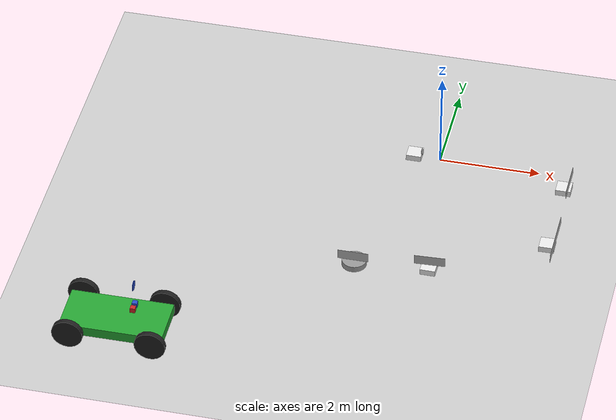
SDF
<sdf version="1.6">
 <world name="default">
  <model name="ground_plane">
   <static>1</static>
   <link name="link">
    <collision name="collision">
     <geometry><plane><normal>0 0 1</normal><size>100 100</size></plane></geometry>
     <surface><friction><ode><mu>100</mu><mu2>50</mu2></ode></friction></surface>
    </collision>
    <visual name="visual">
     <cast_shadows>0</cast_shadows>
     <geometry><plane><normal>0 0 1</normal><size>100 100</size></plane></geometry>
     <material>
      <script><uri>file://media/materials/scripts/gazebo.material</uri><name>Gazebo/Grey</name></script>
     </material>
    </visual>
   </link>
  </model>
  <model name="charge_pile">
   <link name="link_0">
    <pose>0.001175 0.064666 -0.007829 0 -0 0</pose>
    <inertial>
     <mass>1</mass>
     <inertia>
      <ixx>0.166667</ixx>
      <ixy>0</ixy>
      <ixz>0</ixz>
      <iyy>0.166667</iyy>
      <iyz>0</iyz>
      <izz>0.166667</izz>
     </inertia>
    </inertial>
    <visual name="visual">
     <geometry><box><size>0.3 0.3 0.12</size></box></geometry>
     <material>
      <lighting>1</lighting>
      <script><uri>file://media/materials/scripts/gazebo.material</uri><name>Gazebo/White</name></script>
      <ambient>0.3 0.3 0.3 1</ambient>
      <diffuse>0.7 0.7 0.7 1</diffuse>
      <specular>0.01 0.01 0.01 1</specular>
      <emissive>0 0 0 1</emissive>
      <shader type="vertex"><normal_map>__default__</normal_map></shader>
     </material>
    </visual>
    <collision name="collision">
     <geometry><box><size>0.3 0.3 0.12</size></box></geometry>
     <surface>
      <friction>
       <ode><mu>1000</mu><mu2>1000</mu2><fdir1>0 0 0</fdir1><slip1>0</slip1><slip2>0</slip2></ode>
       <torsional>
        <coefficient>1</coefficient>
        <patch_radius>0</patch_radius>
        <surface_radius>0</surface_radius>
        <use_patch_radius>1</use_patch_radius>
        <ode><slip>0</slip></ode>
       </torsional>
      </friction>
      <bounce><restitution_coefficient>0</restitution_coefficient><threshold>1e+06</threshold></bounce>
      <contact>
       <collide_without_contact>0</collide_without_contact>
       <collide_without_contact_bitmask>1</collide_without_contact_bitmask>
       <collide_bitmask>1</collide_bitmask>
       <ode>
        <soft_cfm>0</soft_cfm>
        <soft_erp>0.2</soft_erp>
        <kp>1e+13</kp>
        <kd>1</kd>
        <max_vel>0.01</max_vel>
        <min_depth>0</min_depth>
       </ode>
       <bullet>
        <split_impulse>1</split_impulse>
        <split_impulse_penetration_threshold>-0.01</split_impulse_penetration_threshold>
        <soft_cfm>0</soft_cfm>
        <soft_erp>0.2</soft_erp>
        <kp>1e+13</kp>
        <kd>1</kd>
       </bullet>
      </contact>
     </surface>
    </collision>
   </link>
   <model name="ar_box0_50">
    <link name="link_0">
     <inertial>
      <mass>1.87342e-05</mass>
      <inertia>
       <ixx>9.25984e-08</ixx>
       <ixy>0</ixy>
       <ixz>0</ixz>
       <iyy>1.0155e-07</iyy>
       <iyz>0</iyz>
       <izz>1.22113e-07</izz>
      </inertia>
     </inertial>
     <visual name="visual">
      <geometry><box><size>0.05 0.05 0.05</size></box></geometry>
      <material>
       <lighting>1</lighting>
       <script>
        <uri>model://ar_box0_50/materials/scripts</uri>
        <uri>model://ar_box0_50/materials/textures</uri>
        <name>ArBox050/Image</name>
       </script>
       <ambient>0.3 0.3 0.3 1</ambient>
       <diffuse>0.7 0.7 0.7 1</diffuse>
       <specular>0.01 0.01 0.01 1</specular>
       <emissive>0 0 0 1</emissive>
      </material>
      <cast_shadows>0</cast_shadows>
     </visual>
     <collision name="collision">
      <geometry><box><size>0.05 0.05 0.05</size></box></geometry>
      <surface>
       <friction>
        <ode><mu>100</mu><mu2>100</mu2><fdir1>0 0 0</fdir1><slip1>0</slip1><slip2>0</slip2></ode>
        <torsional>
         <coefficient>1</coefficient>
         <patch_radius>0</patch_radius>
         <surface_radius>0</surface_radius>
         <use_patch_radius>1</use_patch_radius>
         <ode><slip>0</slip></ode>
        </torsional>
       </friction>
       <bounce><restitution_coefficient>0</restitution_coefficient><threshold>1e+06</threshold></bounce>
       <contact>
        <collide_without_contact>0</collide_without_contact>
        <collide_without_contact_bitmask>1</collide_without_contact_bitmask>
        <collide_bitmask>1</collide_bitmask>
        <ode>
         <soft_cfm>0</soft_cfm>
         <soft_erp>0.2</soft_erp>
         <kp>1e+13</kp>
         <kd>1</kd>
         <max_vel>0.01</max_vel>
         <min_depth>0</min_depth>
        </ode>
        <bullet>
         <split_impulse>1</split_impulse>
         <split_impulse_penetration_threshold>-0.01</split_impulse_penetration_threshold>
         <soft_cfm>0</soft_cfm>
         <soft_erp>0.2</soft_erp>
         <kp>1e+13</kp>
         <kd>1</kd>
        </bullet>
       </contact>
      </surface>
     </collision>
    </link>
    <static>0</static>
    <pose>-0.001175 -0.064151 0.007829 0 -0 0</pose>
   </model>
   <joint name="link_0_JOINT_0" type="fixed">
    <parent>link_0</parent>
    <child>ar_box0_50::link_0</child>
    <physics>
     <ode><limit><cfm>0</cfm><erp>0.2</erp></limit><suspension><cfm>0</cfm><erp>0.2</erp></suspension></ode>
    </physics>
   </joint>
   <static>0</static>
   <pose>-0.457807 -0.00142 0.067829 0 -0 1.56608</pose>
  </model>
  <model name="car">
   <link name="chassis">
    <pose>0 0 0.3 0 -0 0</pose>
    <collision name="collision"><geometry><box><size>2 1 0.2</size></box></geometry></collision>
    <visual name="visual">
     <geometry><box><size>2 1 0.2</size></box></geometry>
     <material>
      <script><uri>file://media/materials/scripts/gazebo.material</uri><name>Gazebo/Green</name></script>
     </material>
    </visual>
    <inertial>
     <inertia><ixx>1</ixx><ixy>0</ixy><ixz>0</ixz><iyy>1</iyy><iyz>0</iyz><izz>1</izz></inertia>
     <mass>1</mass>
    </inertial>
   </link>
   <link name="front_left_wheel">
    <pose>0.8 0.6 0.3 -0 1.5707 1.5707</pose>
    <collision name="collision">
     <geometry><cylinder><radius>0.3</radius><length>0.1</length></cylinder></geometry>
    </collision>
    <visual name="visual">
     <geometry><cylinder><radius>0.3</radius><length>0.1</length></cylinder></geometry>
     <material>
      <script><uri>file://media/materials/scripts/gazebo.material</uri><name>Gazebo/Black</name></script>
     </material>
    </visual>
    <inertial>
     <inertia><ixx>1</ixx><ixy>0</ixy><ixz>0</ixz><iyy>1</iyy><iyz>0</iyz><izz>1</izz></inertia>
     <mass>1</mass>
    </inertial>
   </link>
   <link name="front_right_wheel">
    <pose>0.8 -0.6 0.3 -0 1.5707 1.5707</pose>
    <collision name="collision">
     <geometry><cylinder><radius>0.3</radius><length>0.1</length></cylinder></geometry>
    </collision>
    <visual name="visual">
     <geometry><cylinder><radius>0.3</radius><length>0.1</length></cylinder></geometry>
     <material>
      <script><uri>file://media/materials/scripts/gazebo.material</uri><name>Gazebo/Black</name></script>
     </material>
    </visual>
    <inertial>
     <inertia><ixx>1</ixx><ixy>0</ixy><ixz>0</ixz><iyy>1</iyy><iyz>0</iyz><izz>1</izz></inertia>
     <mass>1</mass>
    </inertial>
   </link>
   <link name="back_right_wheel">
    <pose>-0.8 -0.6 0.3 -0 1.5707 1.5707</pose>
    <collision name="collision">
     <geometry><cylinder><radius>0.3</radius><length>0.1</length></cylinder></geometry>
    </collision>
    <visual name="visual">
     <geometry><cylinder><radius>0.3</radius><length>0.1</length></cylinder></geometry>
     <material>
      <script><uri>file://media/materials/scripts/gazebo.material</uri><name>Gazebo/Black</name></script>
     </material>
    </visual>
    <inertial>
     <inertia><ixx>1</ixx><ixy>0</ixy><ixz>0</ixz><iyy>1</iyy><iyz>0</iyz><izz>1</izz></inertia>
     <mass>1</mass>
    </inertial>
   </link>
   <link name="back_left_wheel">
    <pose>-0.8 0.6 0.3 -0 1.5707 1.5707</pose>
    <collision name="collision">
     <geometry><cylinder><radius>0.3</radius><length>0.1</length></cylinder></geometry>
    </collision>
    <visual name="visual">
     <geometry><cylinder><radius>0.3</radius><length>0.1</length></cylinder></geometry>
     <material>
      <script><uri>file://media/materials/scripts/gazebo.material</uri><name>Gazebo/Black</name></script>
     </material>
    </visual>
    <inertial>
     <inertia><ixx>1</ixx><ixy>0</ixy><ixz>0</ixz><iyy>1</iyy><iyz>0</iyz><izz>1</izz></inertia>
     <mass>1</mass>
    </inertial>
   </link>
   <link name="gas_pedal">
    <pose>0.3 0.1 0.5 0 -0 0</pose>
    <collision name="collision"><geometry><box><size>0.1 0.1 0.1</size></box></geometry></collision>
    <visual name="visual">
     <geometry><box><size>0.1 0.1 0.1</size></box></geometry>
     <material>
      <script><uri>file://media/materials/scripts/gazebo.material</uri><name>Gazebo/Red</name></script>
     </material>
    </visual>
    <inertial>
     <inertia><ixx>1</ixx><ixy>0</ixy><ixz>0</ixz><iyy>1</iyy><iyz>0</iyz><izz>1</izz></inertia>
     <mass>1</mass>
    </inertial>
   </link>
   <link name="brake_pedal">
    <pose>0.3 0.25 0.5 0 -0 0</pose>
    <collision name="collision"><geometry><box><size>0.1 0.1 0.1</size></box></geometry></collision>
    <visual name="visual">
     <geometry><box><size>0.1 0.1 0.1</size></box></geometry>
     <material>
      <script><uri>file://media/materials/scripts/gazebo.material</uri><name>Gazebo/Blue</name></script>
     </material>
    </visual>
    <inertial>
     <inertia><ixx>1</ixx><ixy>0</ixy><ixz>0</ixz><iyy>1</iyy><iyz>0</iyz><izz>1</izz></inertia>
     <mass>1</mass>
    </inertial>
   </link>
   <link name="steering_wheel">
    <pose>0.3 0.2 1 0 1.5707 0</pose>
    <collision name="collision">
     <geometry><cylinder><radius>0.1</radius><length>0.01</length></cylinder></geometry>
    </collision>
    <visual name="visual">
     <geometry><cylinder><radius>0.1</radius><length>0.01</length></cylinder></geometry>
     <material>
      <script><uri>file://media/materials/scripts/gazebo.material</uri><name>Gazebo/Blue</name></script>
     </material>
    </visual>
    <inertial>
     <inertia><ixx>1</ixx><ixy>0</ixy><ixz>0</ixz><iyy>1</iyy><iyz>0</iyz><izz>1</izz></inertia>
     <mass>1</mass>
    </inertial>
   </link>
   <joint name="gas_joint" type="prismatic">
    <parent>chassis</parent>
    <child>gas_pedal</child>
    <axis>
     <xyz>1 0 0</xyz>
     <limit><lower>0</lower><upper>0.2</upper></limit>
     <use_parent_model_frame>1</use_parent_model_frame>
     <dynamics><spring_reference>0</spring_reference><spring_stiffness>0</spring_stiffness></dynamics>
    </axis>
   </joint>
   <joint name="brake_joint" type="prismatic">
    <parent>chassis</parent>
    <child>brake_pedal</child>
    <axis>
     <xyz>1 0 0</xyz>
     <limit><lower>0</lower><upper>0.2</upper></limit>
     <use_parent_model_frame>1</use_parent_model_frame>
     <dynamics><spring_reference>0</spring_reference><spring_stiffness>0</spring_stiffness></dynamics>
    </axis>
   </joint>
   <joint name="steering_joint" type="revolute">
    <parent>chassis</parent>
    <child>steering_wheel</child>
    <axis>
     <xyz>1 0 0</xyz>
     <limit><lower>-7.853</lower><upper>7.853</upper></limit>
     <use_parent_model_frame>1</use_parent_model_frame>
     <dynamics><spring_reference>0</spring_reference><spring_stiffness>0</spring_stiffness></dynamics>
    </axis>
   </joint>
   <joint name="front_left_joint" type="revolute2">
    <parent>chassis</parent>
    <child>front_left_wheel</child>
    <axis>
     <xyz>0 0 1</xyz>
     <limit><lower>5.61641e-07</lower><upper>5.61641e-07</upper></limit>
     <use_parent_model_frame>1</use_parent_model_frame>
     <dynamics><spring_reference>0</spring_reference><spring_stiffness>0</spring_stiffness></dynamics>
    </axis>
    <axis2>
     <xyz>0 1 0</xyz>
     <use_parent_model_frame>1</use_parent_model_frame>
     <dynamics><spring_reference>0</spring_reference><spring_stiffness>0</spring_stiffness></dynamics>
    </axis2>
    <physics><ode><limit><cfm>0</cfm><erp>0.9</erp></limit></ode></physics>
   </joint>
   <joint name="front_right_joint" type="revolute2">
    <parent>chassis</parent>
    <child>front_right_wheel</child>
    <axis>
     <xyz>0 0 1</xyz>
     <limit><lower>5.61641e-07</lower><upper>5.61641e-07</upper></limit>
     <use_parent_model_frame>1</use_parent_model_frame>
     <dynamics><spring_reference>0</spring_reference><spring_stiffness>0</spring_stiffness></dynamics>
    </axis>
    <axis2>
     <xyz>0 1 0</xyz>
     <use_parent_model_frame>1</use_parent_model_frame>
     <dynamics><spring_reference>0</spring_reference><spring_stiffness>0</spring_stiffness></dynamics>
    </axis2>
    <physics><ode><limit><cfm>0</cfm><erp>0.9</erp></limit></ode></physics>
   </joint>
   <joint name="back_right_joint" type="revolute2">
    <parent>chassis</parent>
    <child>back_right_wheel</child>
    <axis>
     <xyz>0 0 1</xyz>
     <limit><lower>0</lower><upper>0</upper></limit>
     <use_parent_model_frame>1</use_parent_model_frame>
     <dynamics><spring_reference>0</spring_reference><spring_stiffness>0</spring_stiffness></dynamics>
    </axis>
    <axis2>
     <xyz>0 1 0</xyz>
     <use_parent_model_frame>1</use_parent_model_frame>
     <dynamics><spring_reference>0</spring_reference><spring_stiffness>0</spring_stiffness></dynamics>
    </axis2>
    <physics><ode><limit><cfm>0</cfm><erp>0.9</erp></limit></ode></physics>
   </joint>
   <joint name="back_left_joint" type="revolute2">
    <parent>chassis</parent>
    <child>back_left_wheel</child>
    <axis>
     <xyz>0 0 1</xyz>
     <limit><lower>0</lower><upper>0</upper></limit>
     <use_parent_model_frame>1</use_parent_model_frame>
     <dynamics><spring_reference>0</spring_reference><spring_stiffness>0</spring_stiffness></dynamics>
    </axis>
    <axis2>
     <xyz>0 1 0</xyz>
     <use_parent_model_frame>1</use_parent_model_frame>
     <dynamics><spring_reference>0</spring_reference><spring_stiffness>0</spring_stiffness></dynamics>
    </axis2>
    <physics><ode><limit><cfm>0</cfm><erp>0.9</erp></limit></ode></physics>
   </joint>
   <plugin name="vehicle" filename="libVehiclePlugin.so">
    <front_left>front_left_joint</front_left>
    <front_right>front_right_joint</front_right>
    <back_left>back_left_joint</back_left>
    <back_right>back_right_joint</back_right>
    <gas>gas_joint</gas>
    <brake>brake_joint</brake>
    <steering>steering_joint</steering>
    <front_power>10</front_power>
    <rear_power>10</rear_power>
    <tire_angle_range>0.5</tire_angle_range>
    <max_speed>10</max_speed>
    <aero_load>0.1</aero_load>
   </plugin>
   <pose>-4.96763 -6.30056 -0.002615 -0.000273 0.000908 0.006388</pose>
  </model>
  <model name="charge_flag">
   <link name="link_0">
    <inertial>
     <mass>1</mass>
     <inertia>
      <ixx>0.166667</ixx>
      <ixy>0</ixy>
      <ixz>0</ixz>
      <iyy>0.166667</iyy>
      <iyz>0</iyz>
      <izz>0.166667</izz>
     </inertia>
    </inertial>
    <visual name="visual">
     <geometry><box><size>0.165 0.001 0.094</size></box></geometry>
     <material>
      <lighting>1</lighting>
      <script>
       <uri>model://charge_flag/materials/scripts</uri>
       <uri>model://charge_flag/materials/textures</uri>
       <name>Charge/Image</name>
      </script>
      <ambient>0.3 0.3 0.3 1</ambient>
      <diffuse>0.7 0.7 0.7 1</diffuse>
      <specular>0.01 0.01 0.01 1</specular>
      <emissive>0 0 0 1</emissive>
      <shader type="vertex"><normal_map>__default__</normal_map></shader>
     </material>
    </visual>
    <collision name="collision">
     <geometry><box><size>0.001 0.001 0.001</size></box></geometry>
     <surface>
      <friction>
       <ode><mu>1</mu><mu2>1</mu2><fdir1>0 0 0</fdir1><slip1>0</slip1><slip2>0</slip2></ode>
       <torsional>
        <coefficient>1</coefficient>
        <patch_radius>0</patch_radius>
        <surface_radius>0</surface_radius>
        <use_patch_radius>1</use_patch_radius>
        <ode><slip>0</slip></ode>
       </torsional>
      </friction>
      <bounce><restitution_coefficient>0</restitution_coefficient><threshold>1e+06</threshold></bounce>
      <contact>
       <collide_without_contact>0</collide_without_contact>
       <collide_without_contact_bitmask>1</collide_without_contact_bitmask>
       <collide_bitmask>1</collide_bitmask>
       <ode>
        <soft_cfm>0</soft_cfm>
        <soft_erp>0.2</soft_erp>
        <kp>1e+13</kp>
        <kd>1</kd>
        <max_vel>0.01</max_vel>
        <min_depth>0</min_depth>
       </ode>
       <bullet>
        <split_impulse>1</split_impulse>
        <split_impulse_penetration_threshold>-0.01</split_impulse_penetration_threshold>
        <soft_cfm>0</soft_cfm>
        <soft_erp>0.2</soft_erp>
        <kp>1e+13</kp>
        <kd>1</kd>
       </bullet>
      </contact>
     </surface>
    </collision>
   </link>
   <static>1</static>
   <pose>-0.379743 -0.002865 0.1681 0 -0 1.57994</pose>
  </model>
  <model name="charge_pile_3">
   <link name="link_0">
    <pose>0.001175 0.064666 -0.007829 0 -0 0</pose>
    <inertial>
     <mass>1</mass>
     <inertia>
      <ixx>0.166667</ixx>
      <ixy>0</ixy>
      <ixz>0</ixz>
      <iyy>0.166667</iyy>
      <iyz>0</iyz>
      <izz>0.166667</izz>
     </inertia>
    </inertial>
    <visual name="visual">
     <geometry><box><size>0.3 0.3 0.12</size></box></geometry>
     <material>
      <lighting>1</lighting>
      <script><uri>file://media/materials/scripts/gazebo.material</uri><name>Gazebo/White</name></script>
      <ambient>0.3 0.3 0.3 1</ambient>
      <diffuse>0.7 0.7 0.7 1</diffuse>
      <specular>0.01 0.01 0.01 1</specular>
      <emissive>0 0 1 1</emissive>
      <shader type="vertex"><normal_map>__default__</normal_map></shader>
     </material>
    </visual>
    <collision name="collision">
     <geometry><box><size>0.3 0.3 0.12</size></box></geometry>
     <surface>
      <friction><ode><mu>100</mu><mu2>50</mu2></ode></friction>
      <bounce><restitution_coefficient>0</restitution_coefficient><threshold>1e+06</threshold></bounce>
      <contact>
       <collide_without_contact>0</collide_without_contact>
       <collide_without_contact_bitmask>1</collide_without_contact_bitmask>
       <collide_bitmask>1</collide_bitmask>
       <ode>
        <soft_cfm>0</soft_cfm>
        <soft_erp>0.2</soft_erp>
        <kp>1e+13</kp>
        <kd>1</kd>
        <max_vel>0.01</max_vel>
        <min_depth>0</min_depth>
       </ode>
       <bullet>
        <split_impulse>1</split_impulse>
        <split_impulse_penetration_threshold>-0.01</split_impulse_penetration_threshold>
        <soft_cfm>0</soft_cfm>
        <soft_erp>0.2</soft_erp>
        <kp>1e+13</kp>
        <kd>1</kd>
       </bullet>
      </contact>
     </surface>
    </collision>
   </link>
   <model name="ar_box0_50">
    <link name="link_0">
     <inertial>
      <mass>1.87342e-05</mass>
      <inertia>
       <ixx>9.25984e-08</ixx>
       <ixy>0</ixy>
       <ixz>0</ixz>
       <iyy>1.0155e-07</iyy>
       <iyz>0</iyz>
       <izz>1.22113e-07</izz>
      </inertia>
     </inertial>
     <visual name="visual">
      <geometry><box><size>0.05 0.05 0.05</size></box></geometry>
      <material>
       <lighting>1</lighting>
       <script>
        <uri>model://ar_box0_50/materials/scripts</uri>
        <uri>model://ar_box0_50/materials/textures</uri>
        <name>ArBox050/Image</name>
       </script>
       <ambient>0.3 0.3 0.3 1</ambient>
       <diffuse>0.7 0.7 0.7 1</diffuse>
       <specular>0.01 0.01 0.01 1</specular>
       <emissive>1 1 1 1</emissive>
      </material>
      <cast_shadows>0</cast_shadows>
     </visual>
     <collision name="collision">
      <geometry><box><size>0.05 0.05 0.05</size></box></geometry>
      <surface>
       <friction><ode><mu>100</mu><mu2>50</mu2></ode></friction>
       <bounce><restitution_coefficient>0</restitution_coefficient><threshold>1e+06</threshold></bounce>
       <contact>
        <collide_without_contact>0</collide_without_contact>
        <collide_without_contact_bitmask>1</collide_without_contact_bitmask>
        <collide_bitmask>1</collide_bitmask>
        <ode>
         <soft_cfm>0</soft_cfm>
         <soft_erp>0.2</soft_erp>
         <kp>1e+13</kp>
         <kd>1</kd>
         <max_vel>0.01</max_vel>
         <min_depth>0</min_depth>
        </ode>
        <bullet>
         <split_impulse>1</split_impulse>
         <split_impulse_penetration_threshold>-0.01</split_impulse_penetration_threshold>
         <soft_cfm>0</soft_cfm>
         <soft_erp>0.2</soft_erp>
         <kp>1e+13</kp>
         <kd>1</kd>
        </bullet>
       </contact>
      </surface>
     </collision>
    </link>
    <static>0</static>
    <pose>-0.001175 -0.064151 0.007829 0 -0 0</pose>
   </model>
   <joint name="link_0_JOINT_0" type="fixed">
    <parent>link_0</parent>
    <child>ar_box0_50::link_0</child>
    <physics>
     <ode><limit><cfm>0</cfm><erp>0.2</erp></limit><suspension><cfm>0</cfm><erp>0.2</erp></suspension></ode>
    </physics>
   </joint>
   <static>0</static>
   <pose>2.49613 -0.413245 0.067829 0 0 -1.57087</pose>
  </model>
  <model name="Text-AO">
   <link name="link_0">
    <inertial>
     <mass>1</mass>
     <inertia>
      <ixx>0.166667</ixx>
      <ixy>0</ixy>
      <ixz>0</ixz>
      <iyy>0.166667</iyy>
      <iyz>0</iyz>
      <izz>0.166667</izz>
     </inertia>
    </inertial>
    <visual name="visual">
     <geometry><box><size>1.2 0.001 0.2</size></box></geometry>
     <material>
      <lighting>1</lighting>
      <script>
       <uri>model://Text/materials/scripts</uri>
       <uri>model://Text/materials/textures</uri>
       <name>AO/Image</name>
      </script>
      <ambient>0.3 0.3 0.3 1</ambient>
      <diffuse>0.7 0.7 0.7 1</diffuse>
      <specular>0.01 0.01 0.01 1</specular>
      <emissive>0 0 0 1</emissive>
      <shader type="vertex"><normal_map>__default__</normal_map></shader>
     </material>
    </visual>
    <collision name="collision">
     <geometry><box><size>0.000998022 0.001 0.00100008</size></box></geometry>
     <surface>
      <friction>
       <ode><mu>1</mu><mu2>1</mu2><fdir1>0 0 0</fdir1><slip1>0</slip1><slip2>0</slip2></ode>
       <torsional>
        <coefficient>1</coefficient>
        <patch_radius>0</patch_radius>
        <surface_radius>0</surface_radius>
        <use_patch_radius>1</use_patch_radius>
        <ode><slip>0</slip></ode>
       </torsional>
      </friction>
      <bounce><restitution_coefficient>0</restitution_coefficient><threshold>1e+06</threshold></bounce>
      <contact>
       <collide_without_contact>0</collide_without_contact>
       <collide_without_contact_bitmask>1</collide_without_contact_bitmask>
       <collide_bitmask>1</collide_bitmask>
       <ode>
        <soft_cfm>0</soft_cfm>
        <soft_erp>0.2</soft_erp>
        <kp>1e+13</kp>
        <kd>1</kd>
        <max_vel>0.01</max_vel>
        <min_depth>0</min_depth>
       </ode>
       <bullet>
        <split_impulse>1</split_impulse>
        <split_impulse_penetration_threshold>-0.01</split_impulse_penetration_threshold>
        <soft_cfm>0</soft_cfm>
        <soft_erp>0.2</soft_erp>
        <kp>1e+13</kp>
        <kd>1</kd>
       </bullet>
      </contact>
     </surface>
    </collision>
   </link>
   <static>1</static>
   <pose>2.70061 -2.18044 0.252037 0 0 -1.57407</pose>
  </model>
  <model name="charge_pile_4">
   <link name="link_0">
    <pose>0.001175 0.064666 -0.007829 0 -0 0</pose>
    <inertial>
     <mass>1</mass>
     <inertia>
      <ixx>0.166667</ixx>
      <ixy>0</ixy>
      <ixz>0</ixz>
      <iyy>0.166667</iyy>
      <iyz>0</iyz>
      <izz>0.166667</izz>
     </inertia>
    </inertial>
    <visual name="visual">
     <geometry><box><size>0.3 0.3 0.12</size></box></geometry>
     <material>
      <lighting>1</lighting>
      <script><uri>file://media/materials/scripts/gazebo.material</uri><name>Gazebo/White</name></script>
      <ambient>0.3 0.3 0.3 1</ambient>
      <diffuse>0.7 0.7 0.7 1</diffuse>
      <specular>0.01 0.01 0.01 1</specular>
      <emissive>0 0 1 1</emissive>
      <shader type="vertex"><normal_map>__default__</normal_map></shader>
     </material>
    </visual>
    <collision name="collision">
     <geometry><box><size>0.3 0.3 0.12</size></box></geometry>
     <surface>
      <friction><ode><mu>100</mu><mu2>50</mu2></ode></friction>
      <bounce><restitution_coefficient>0</restitution_coefficient><threshold>1e+06</threshold></bounce>
      <contact>
       <collide_without_contact>0</collide_without_contact>
       <collide_without_contact_bitmask>1</collide_without_contact_bitmask>
       <collide_bitmask>1</collide_bitmask>
       <ode>
        <soft_cfm>0</soft_cfm>
        <soft_erp>0.2</soft_erp>
        <kp>1e+13</kp>
        <kd>1</kd>
        <max_vel>0.01</max_vel>
        <min_depth>0</min_depth>
       </ode>
       <bullet>
        <split_impulse>1</split_impulse>
        <split_impulse_penetration_threshold>-0.01</split_impulse_penetration_threshold>
        <soft_cfm>0</soft_cfm>
        <soft_erp>0.2</soft_erp>
        <kp>1e+13</kp>
        <kd>1</kd>
       </bullet>
      </contact>
     </surface>
    </collision>
   </link>
   <model name="ar_box0_50">
    <link name="link_0">
     <inertial>
      <mass>1.87342e-05</mass>
      <inertia>
       <ixx>9.25984e-08</ixx>
       <ixy>0</ixy>
       <ixz>0</ixz>
       <iyy>1.0155e-07</iyy>
       <iyz>0</iyz>
       <izz>1.22113e-07</izz>
      </inertia>
     </inertial>
     <visual name="visual">
      <geometry><box><size>0.05 0.05 0.05</size></box></geometry>
      <material>
       <lighting>1</lighting>
       <script>
        <uri>model://ar_box0_50/materials/scripts</uri>
        <uri>model://ar_box0_50/materials/textures</uri>
        <name>ArBox050/Image</name>
       </script>
       <ambient>0.3 0.3 0.3 1</ambient>
       <diffuse>0.7 0.7 0.7 1</diffuse>
       <specular>0.01 0.01 0.01 1</specular>
       <emissive>1 1 1 1</emissive>
      </material>
      <cast_shadows>0</cast_shadows>
     </visual>
     <collision name="collision">
      <geometry><box><size>0.05 0.05 0.05</size></box></geometry>
      <surface>
       <friction><ode><mu>100</mu><mu2>50</mu2></ode></friction>
       <bounce><restitution_coefficient>0</restitution_coefficient><threshold>1e+06</threshold></bounce>
       <contact>
        <collide_without_contact>0</collide_without_contact>
        <collide_without_contact_bitmask>1</collide_without_contact_bitmask>
        <collide_bitmask>1</collide_bitmask>
        <ode>
         <soft_cfm>0</soft_cfm>
         <soft_erp>0.2</soft_erp>
         <kp>1e+13</kp>
         <kd>1</kd>
         <max_vel>0.01</max_vel>
         <min_depth>0</min_depth>
        </ode>
        <bullet>
         <split_impulse>1</split_impulse>
         <split_impulse_penetration_threshold>-0.01</split_impulse_penetration_threshold>
         <soft_cfm>0</soft_cfm>
         <soft_erp>0.2</soft_erp>
         <kp>1e+13</kp>
         <kd>1</kd>
        </bullet>
       </contact>
      </surface>
     </collision>
    </link>
    <static>0</static>
    <pose>-0.001175 -0.064151 0.007829 0 -0 0</pose>
   </model>
   <joint name="link_0_JOINT_0" type="fixed">
    <parent>link_0</parent>
    <child>ar_box0_50::link_0</child>
    <physics>
     <ode><limit><cfm>0</cfm><erp>0.2</erp></limit><suspension><cfm>0</cfm><erp>0.2</erp></suspension></ode>
    </physics>
   </joint>
   <static>0</static>
   <pose>2.47722 -2.15716 0.067829 0 0 -1.56101</pose>
  </model>
  <model name="TextEndProduct">
   <link name="link_0">
    <inertial>
     <mass>1</mass>
     <inertia>
      <ixx>0.166667</ixx>
      <ixy>0</ixy>
      <ixz>0</ixz>
      <iyy>0.166667</iyy>
      <iyz>0</iyz>
      <izz>0.166667</izz>
     </inertia>
    </inertial>
    <visual name="visual">
     <geometry><box><size>0.599999 0.001 0.2</size></box></geometry>
     <material>
      <lighting>1</lighting>
      <script>
       <uri>model://Text/materials/scripts</uri>
       <uri>model://Text/materials/textures</uri>
       <name>EndProduct/Image</name>
      </script>
      <ambient>0.3 0.3 0.3 1</ambient>
      <diffuse>0.7 0.7 0.7 1</diffuse>
      <specular>0.01 0.01 0.01 1</specular>
      <emissive>0 0 0 1</emissive>
      <shader type="vertex"><normal_map>__default__</normal_map></shader>
     </material>
    </visual>
    <collision name="collision">
     <geometry><box><size>0.00099999 0.001 0.00100016</size></box></geometry>
     <surface>
      <friction>
       <ode><mu>1</mu><mu2>1</mu2><fdir1>0 0 0</fdir1><slip1>0</slip1><slip2>0</slip2></ode>
       <torsional>
        <coefficient>1</coefficient>
        <patch_radius>0</patch_radius>
        <surface_radius>0</surface_radius>
        <use_patch_radius>1</use_patch_radius>
        <ode><slip>0</slip></ode>
       </torsional>
      </friction>
      <bounce><restitution_coefficient>0</restitution_coefficient><threshold>1e+06</threshold></bounce>
      <contact>
       <collide_without_contact>0</collide_without_contact>
       <collide_without_contact_bitmask>1</collide_without_contact_bitmask>
       <collide_bitmask>1</collide_bitmask>
       <ode>
        <soft_cfm>0</soft_cfm>
        <soft_erp>0.2</soft_erp>
        <kp>1e+13</kp>
        <kd>1</kd>
        <max_vel>0.01</max_vel>
        <min_depth>0</min_depth>
       </ode>
       <bullet>
        <split_impulse>1</split_impulse>
        <split_impulse_penetration_threshold>-0.01</split_impulse_penetration_threshold>
        <soft_cfm>0</soft_cfm>
        <soft_erp>0.2</soft_erp>
        <kp>1e+13</kp>
        <kd>1</kd>
       </bullet>
      </contact>
     </surface>
    </collision>
   </link>
   <static>1</static>
   <pose>0.463313 -3.37499 0.285689 0 0 -3.09719</pose>
  </model>
  <model name="TextRecycle">
   <link name="link_0">
    <inertial>
     <mass>1</mass>
     <inertia>
      <ixx>0.166667</ixx>
      <ixy>0</ixy>
      <ixz>0</ixz>
      <iyy>0.166667</iyy>
      <iyz>0</iyz>
      <izz>0.166667</izz>
     </inertia>
    </inertial>
    <visual name="visual">
     <geometry><box><size>0.599998 0.001 0.199999</size></box></geometry>
     <material>
      <lighting>1</lighting>
      <script>
       <uri>model://Text/materials/scripts</uri>
       <uri>model://Text/materials/textures</uri>
       <name>Recycle/Image</name>
      </script>
      <ambient>0.3 0.3 0.3 1</ambient>
      <diffuse>0.7 0.7 0.7 1</diffuse>
      <specular>0.01 0.01 0.01 1</specular>
      <emissive>0 0 0 1</emissive>
      <shader type="vertex"><normal_map>__default__</normal_map></shader>
     </material>
    </visual>
    <collision name="collision">
     <geometry><box><size>0.00100116 0.001 0.000998926</size></box></geometry>
     <surface>
      <friction>
       <ode><mu>1</mu><mu2>1</mu2><fdir1>0 0 0</fdir1><slip1>0</slip1><slip2>0</slip2></ode>
       <torsional>
        <coefficient>1</coefficient>
        <patch_radius>0</patch_radius>
        <surface_radius>0</surface_radius>
        <use_patch_radius>1</use_patch_radius>
        <ode><slip>0</slip></ode>
       </torsional>
      </friction>
      <bounce><restitution_coefficient>0</restitution_coefficient><threshold>1e+06</threshold></bounce>
      <contact>
       <collide_without_contact>0</collide_without_contact>
       <collide_without_contact_bitmask>1</collide_without_contact_bitmask>
       <collide_bitmask>1</collide_bitmask>
       <ode>
        <soft_cfm>0</soft_cfm>
        <soft_erp>0.2</soft_erp>
        <kp>1e+13</kp>
        <kd>1</kd>
        <max_vel>0.01</max_vel>
        <min_depth>0</min_depth>
       </ode>
       <bullet>
        <split_impulse>1</split_impulse>
        <split_impulse_penetration_threshold>-0.01</split_impulse_penetration_threshold>
        <soft_cfm>0</soft_cfm>
        <soft_erp>0.2</soft_erp>
        <kp>1e+13</kp>
        <kd>1</kd>
       </bullet>
      </contact>
     </surface>
    </collision>
   </link>
   <static>1</static>
   <pose>-1.00963 -3.5438 0.277131 0 -0 0</pose>
  </model>
  <model name="Textcnc_0">
   <link name="link_0">
    <inertial>
     <mass>1</mass>
     <inertia>
      <ixx>0.166667</ixx>
      <ixy>0</ixy>
      <ixz>0</ixz>
      <iyy>0.166667</iyy>
      <iyz>0</iyz>
      <izz>0.166667</izz>
     </inertia>
    </inertial>
    <visual name="visual">
     <geometry><box><size>0.8 0.001 0.2</size></box></geometry>
     <material>
      <lighting>1</lighting>
      <script>
       <uri>model://Text/materials/scripts</uri>
       <uri>model://Text/materials/textures</uri>
       <name>Cnc/Image</name>
      </script>
      <ambient>0.3 0.3 0.3 1</ambient>
      <diffuse>0.7 0.7 0.7 1</diffuse>
      <specular>0.01 0.01 0.01 1</specular>
      <emissive>0 0 0 1</emissive>
      <shader type="vertex"><normal_map>__default__</normal_map></shader>
     </material>
    </visual>
    <collision name="collision">
     <geometry><box><size>0.001 0.001 0.001</size></box></geometry>
     <surface>
      <friction>
       <ode><mu>1</mu><mu2>1</mu2><fdir1>0 0 0</fdir1><slip1>0</slip1><slip2>0</slip2></ode>
       <torsional>
        <coefficient>1</coefficient>
        <patch_radius>0</patch_radius>
        <surface_radius>0</surface_radius>
        <use_patch_radius>1</use_patch_radius>
        <ode><slip>0</slip></ode>
       </torsional>
      </friction>
      <bounce><restitution_coefficient>0</restitution_coefficient><threshold>1e+06</threshold></bounce>
      <contact>
       <collide_without_contact>0</collide_without_contact>
       <collide_without_contact_bitmask>1</collide_without_contact_bitmask>
       <collide_bitmask>1</collide_bitmask>
       <ode>
        <soft_cfm>0</soft_cfm>
        <soft_erp>0.2</soft_erp>
        <kp>1e+13</kp>
        <kd>1</kd>
        <max_vel>0.01</max_vel>
        <min_depth>0</min_depth>
       </ode>
       <bullet>
        <split_impulse>1</split_impulse>
        <split_impulse_penetration_threshold>-0.01</split_impulse_penetration_threshold>
        <soft_cfm>0</soft_cfm>
        <soft_erp>0.2</soft_erp>
        <kp>1e+13</kp>
        <kd>1</kd>
       </bullet>
      </contact>
     </surface>
    </collision>
   </link>
   <static>1</static>
   <pose>2.66371 -0.420749 0.238218 0 0 -1.57548</pose>
  </model>
  <model name="charge_pile_5">
   <link name="link_0">
    <pose>0.001175 0.064666 -0.007829 0 -0 0</pose>
    <inertial>
     <mass>1</mass>
     <inertia>
      <ixx>0.166667</ixx>
      <ixy>0</ixy>
      <ixz>0</ixz>
      <iyy>0.166667</iyy>
      <iyz>0</iyz>
      <izz>0.166667</izz>
     </inertia>
    </inertial>
    <visual name="visual">
     <geometry><box><size>0.3 0.3 0.12</size></box></geometry>
     <material>
      <lighting>1</lighting>
      <script><uri>file://media/materials/scripts/gazebo.material</uri><name>Gazebo/White</name></script>
      <ambient>0.3 0.3 0.3 1</ambient>
      <diffuse>0.7 0.7 0.7 1</diffuse>
      <specular>0.01 0.01 0.01 1</specular>
      <emissive>0 0 1 1</emissive>
      <shader type="vertex"><normal_map>__default__</normal_map></shader>
     </material>
    </visual>
    <collision name="collision">
     <geometry><box><size>0.3 0.3 0.12</size></box></geometry>
     <surface>
      <friction><ode><mu>100</mu><mu2>50</mu2></ode></friction>
      <bounce><restitution_coefficient>0</restitution_coefficient><threshold>1e+06</threshold></bounce>
      <contact>
       <collide_without_contact>0</collide_without_contact>
       <collide_without_contact_bitmask>1</collide_without_contact_bitmask>
       <collide_bitmask>1</collide_bitmask>
       <ode>
        <soft_cfm>0</soft_cfm>
        <soft_erp>0.2</soft_erp>
        <kp>1e+13</kp>
        <kd>1</kd>
        <max_vel>0.01</max_vel>
        <min_depth>0</min_depth>
       </ode>
       <bullet>
        <split_impulse>1</split_impulse>
        <split_impulse_penetration_threshold>-0.01</split_impulse_penetration_threshold>
        <soft_cfm>0</soft_cfm>
        <soft_erp>0.2</soft_erp>
        <kp>1e+13</kp>
        <kd>1</kd>
       </bullet>
      </contact>
     </surface>
    </collision>
   </link>
   <model name="ar_box0_50">
    <link name="link_0">
     <inertial>
      <mass>1.87342e-05</mass>
      <inertia>
       <ixx>9.25984e-08</ixx>
       <ixy>0</ixy>
       <ixz>0</ixz>
       <iyy>1.0155e-07</iyy>
       <iyz>0</iyz>
       <izz>1.22113e-07</izz>
      </inertia>
     </inertial>
     <visual name="visual">
      <geometry><box><size>0.05 0.05 0.05</size></box></geometry>
      <material>
       <lighting>1</lighting>
       <script>
        <uri>model://ar_box0_50/materials/scripts</uri>
        <uri>model://ar_box0_50/materials/textures</uri>
        <name>ArBox050/Image</name>
       </script>
       <ambient>0.3 0.3 0.3 1</ambient>
       <diffuse>0.7 0.7 0.7 1</diffuse>
       <specular>0.01 0.01 0.01 1</specular>
       <emissive>1 1 1 1</emissive>
      </material>
      <cast_shadows>0</cast_shadows>
     </visual>
     <collision name="collision">
      <geometry><box><size>0.05 0.05 0.05</size></box></geometry>
      <surface>
       <friction><ode><mu>100</mu><mu2>50</mu2></ode></friction>
       <bounce><restitution_coefficient>0</restitution_coefficient><threshold>1e+06</threshold></bounce>
       <contact>
        <collide_without_contact>0</collide_without_contact>
        <collide_without_contact_bitmask>1</collide_without_contact_bitmask>
        <collide_bitmask>1</collide_bitmask>
        <ode>
         <soft_cfm>0</soft_cfm>
         <soft_erp>0.2</soft_erp>
         <kp>1e+13</kp>
         <kd>1</kd>
         <max_vel>0.01</max_vel>
         <min_depth>0</min_depth>
        </ode>
        <bullet>
         <split_impulse>1</split_impulse>
         <split_impulse_penetration_threshold>-0.01</split_impulse_penetration_threshold>
         <soft_cfm>0</soft_cfm>
         <soft_erp>0.2</soft_erp>
         <kp>1e+13</kp>
         <kd>1</kd>
        </bullet>
       </contact>
      </surface>
     </collision>
    </link>
    <static>0</static>
    <pose>-0.001175 -0.064151 0.007829 0 -0 0</pose>
   </model>
   <joint name="link_0_JOINT_0" type="fixed">
    <parent>link_0</parent>
    <child>ar_box0_50::link_0</child>
    <physics>
     <ode><limit><cfm>0</cfm><erp>0.2</erp></limit><suspension><cfm>0</cfm><erp>0.2</erp></suspension></ode>
    </physics>
   </joint>
   <static>0</static>
   <pose>0.442099 -3.25925 0.067829 0 -0 3.12796</pose>
  </model>
  <model name="yuanzhu">
   <link name="link_0">
    <inertial>
     <mass>1</mass>
     <inertia><ixx>0.145833</ixx><ixy>0</ixy><ixz>0</ixz><iyy>0.145833</iyy><iyz>0</iyz><izz>0.125</izz></inertia>
    </inertial>
    <visual name="visual">
     <geometry><cylinder><radius>0.241658</radius><length>0.118588</length></cylinder></geometry>
     <material>
      <lighting>1</lighting>
      <script><uri>file://media/materials/scripts/gazebo.material</uri><name>Gazebo/Grey</name></script>
      <ambient>0.3 0.3 0.3 1</ambient>
      <diffuse>0.7 0.7 0.7 1</diffuse>
      <specular>0.01 0.01 0.01 1</specular>
      <emissive>0 0 0 1</emissive>
     </material>
    </visual>
    <collision name="collision">
     <geometry><cylinder><radius>0.241658</radius><length>0.118588</length></cylinder></geometry>
     <surface>
      <friction>
       <ode><mu>1</mu><mu2>1</mu2><fdir1>0 0 0</fdir1><slip1>0</slip1><slip2>0</slip2></ode>
       <torsional>
        <coefficient>1</coefficient>
        <patch_radius>0</patch_radius>
        <surface_radius>0</surface_radius>
        <use_patch_radius>1</use_patch_radius>
        <ode><slip>0</slip></ode>
       </torsional>
      </friction>
      <bounce><restitution_coefficient>0</restitution_coefficient><threshold>1e+06</threshold></bounce>
      <contact>
       <collide_without_contact>0</collide_without_contact>
       <collide_without_contact_bitmask>1</collide_without_contact_bitmask>
       <collide_bitmask>1</collide_bitmask>
       <ode>
        <soft_cfm>0</soft_cfm>
        <soft_erp>0.2</soft_erp>
        <kp>1e+13</kp>
        <kd>1</kd>
        <max_vel>0.01</max_vel>
        <min_depth>0</min_depth>
       </ode>
       <bullet>
        <split_impulse>1</split_impulse>
        <split_impulse_penetration_threshold>-0.01</split_impulse_penetration_threshold>
        <soft_cfm>0</soft_cfm>
        <soft_erp>0.2</soft_erp>
        <kp>1e+13</kp>
        <kd>1</kd>
       </bullet>
      </contact>
     </surface>
    </collision>
   </link>
   <static>0</static>
   <pose>-1.00159 -3.45395 0.059288 -2e-06 -2e-06 0</pose>
  </model>
 </world>
</sdf>
